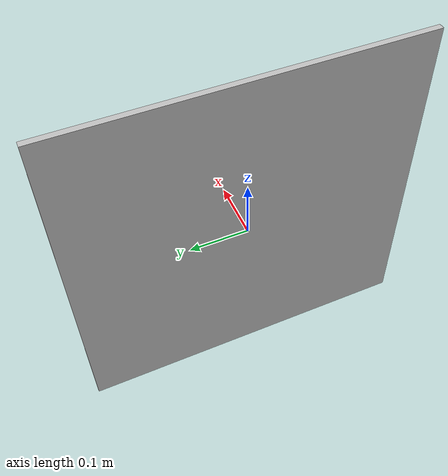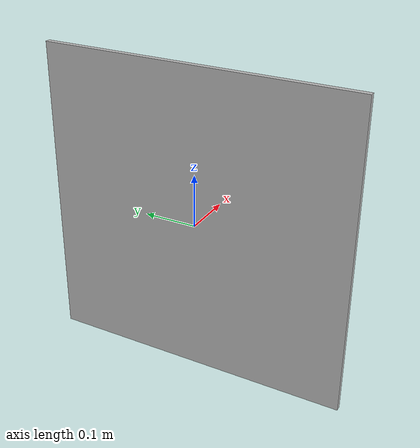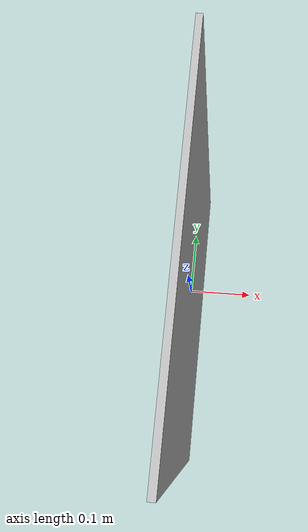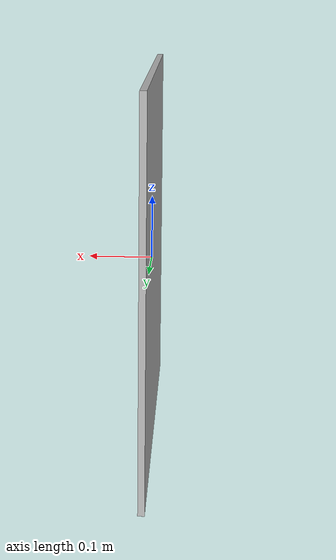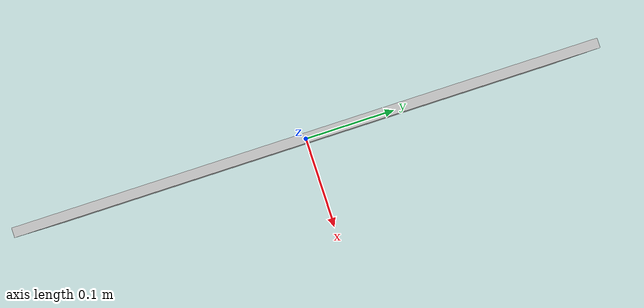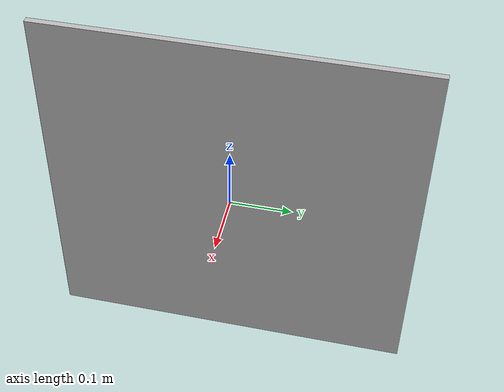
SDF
<sdf version='1.6'>
  <world name='default'>
    <model name='static_apriltag_0'>
      <link name='link'>
        <pose frame=''>0 0 0 0 1.57 0</pose>
        <inertial>
          <mass>0.39</mass>
          <inertia>
            <ixx>0.00058</ixx>
            <ixy>0</ixy>
            <ixz>0</ixz>
            <iyy>0.00058</iyy>
            <iyz>0</iyz>
            <izz>0.00019</izz>
          </inertia>
          <pose frame=''>0 0 0 0 -0 0</pose>
        </inertial>
        <collision name='collision'>
          <geometry>
            <box>
              <size>0.6 0.6 0.01</size>
            </box>
          </geometry>
          <max_contacts>10</max_contacts>
          <surface>
            <contact>
              <ode/>
            </contact>
            <bounce/>
            <friction>
              <torsional>
                <ode/>
              </torsional>
              <ode/>
            </friction>
          </surface>
        </collision>
        <visual name='visual'>
          <geometry>
            <box>
              <size>0.6 0.6 0.01</size>
            </box>
          </geometry>
          <material>
            <script>
              <uri>model://apriltag/materials/scripts/aruco.material</uri>
              <uri>model://apriltag/materials/textures</uri>
              <name>apriltag/Diffuse0</name>
            </script>
          </material>
        </visual>
        <self_collide>0</self_collide>
        <enable_wind>0</enable_wind>
        <kinematic>0</kinematic>
        <gravity>0</gravity>
      </link>
      <pose frame=''>0 -0 0 0 -0 0</pose>
      <static>0</static>
      <allow_auto_disable>1</allow_auto_disable>
      <pose frame=''>1.90787 0.108649 0 0 -0 0</pose>
    </model>
  </world>
</sdf>
